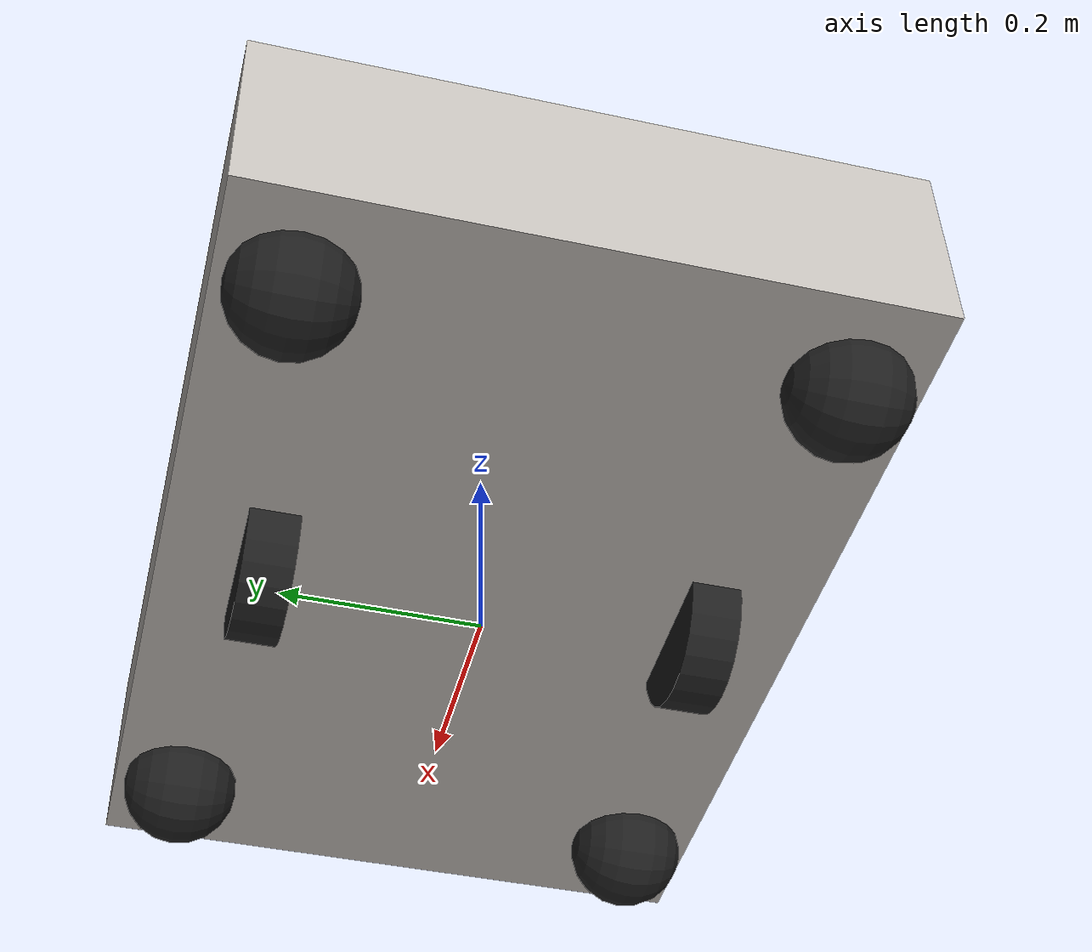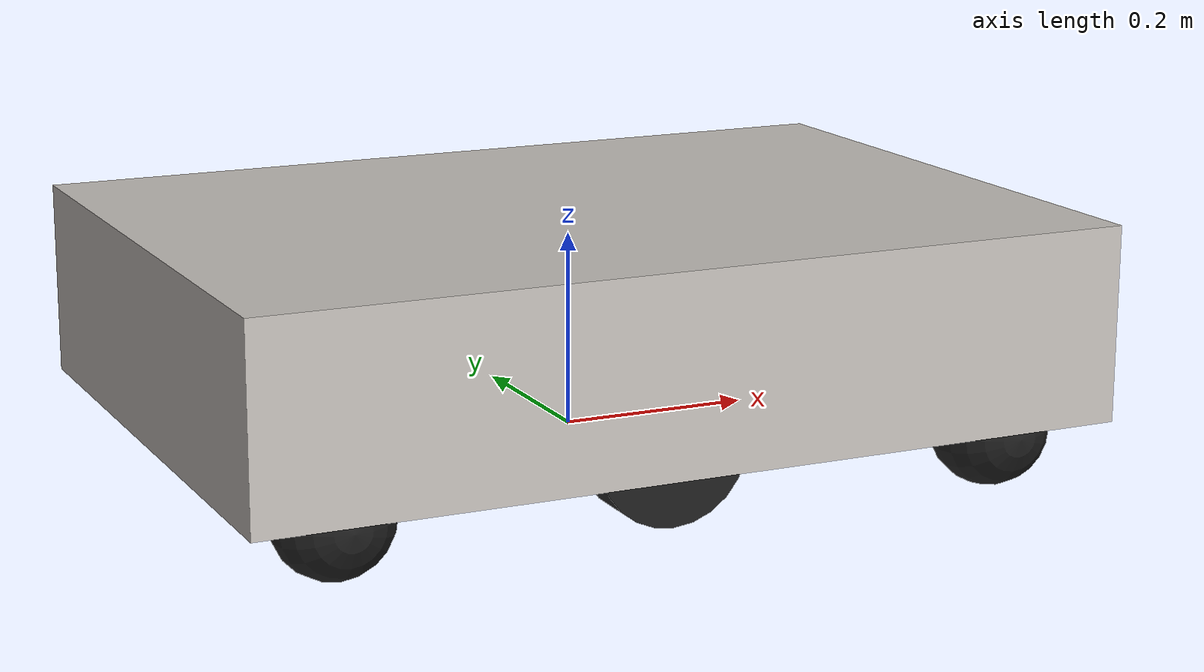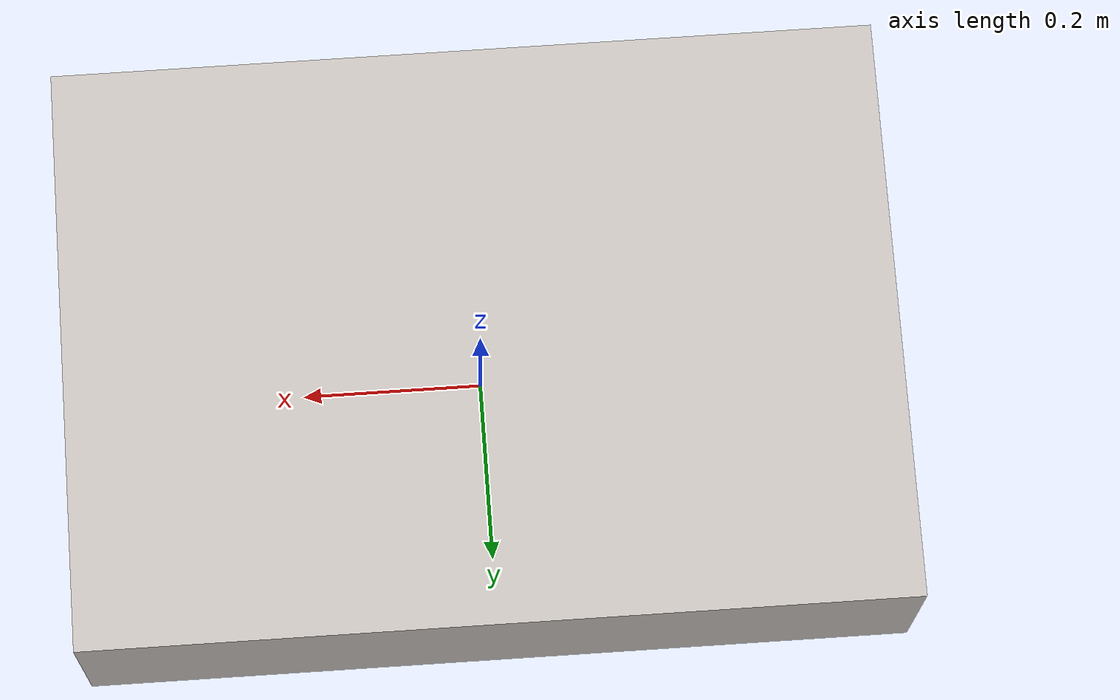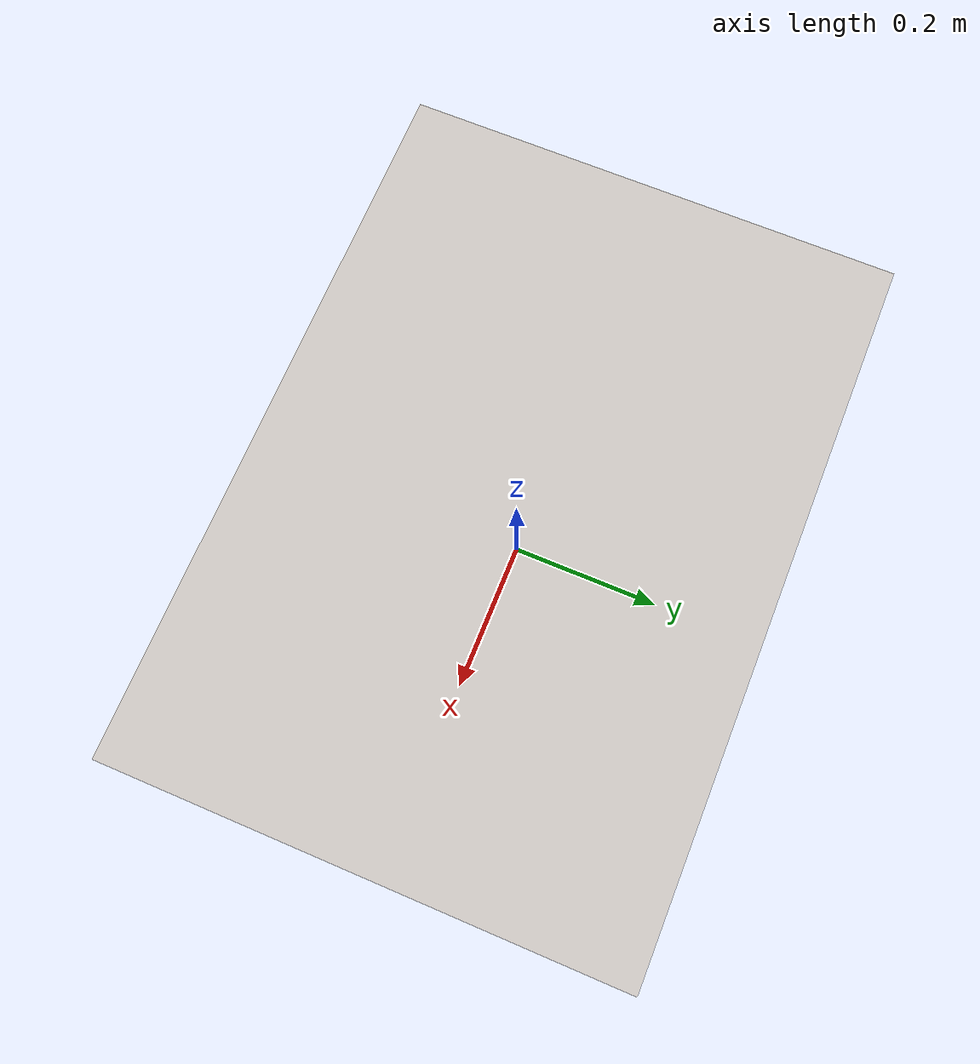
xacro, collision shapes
<?xml version="1.0"?>
<robot xmlns:xacro="http://www.ros.org/wiki/xacro" name="amr_mtt">

    <!--................................ XACRO CONSTANTS .............................. -->

    <xacro:property name="chassis_mass" value="60"/>
    <xacro:property name="chassis_length" value="0.9"/>
    <xacro:property name="chassis_width" value="0.64"/>
    <xacro:property name="chassis_height" value="0.2"/>

    <xacro:property name="traction_wheel_mass" value="1"/>
    <xacro:property name="traction_wheel_base" value="0.88"/>
    <xacro:property name="traction_max_wheel_torque" value="150000"/>
    <xacro:property name="traction_wheel_friction" value="3.0"/>

    <xacro:property name="trolley_wheel_mass" value="0.1"/>
    <xacro:property name="trolley_track_width" value="0.5"/>
    <xacro:property name="trolley_wheel_friction" value="0.0"/>
    <xacro:property name="trolley_wheel_radius" value="0.06"/>
    <!-- a small constant -->
    <xacro:property name="eps" value="0.002"/>

    <xacro:property name="traction_wheel_radius" value="0.08"/>
    <xacro:property name="traction_wheel_width" value="0.05"/>
    <xacro:property name="traction_track_width" value="0.436"/>

    <xacro:property name="two_d_lidar_update_rate" value="30"/>
    <xacro:property name="two_d_lidar_sample_size" value="361"/>
    <xacro:property name="two_d_lidar_min_angle" value="0"/>
    <xacro:property name="two_d_lidar_max_angle" value="360"/>
    <xacro:property name="two_d_lidar_min_range" value="0.55"/>
    <xacro:property name="two_d_lidar_max_range" value="16"/>

    <xacro:property name="camera_baseline" value="0.06"/>
    <xacro:property name="camera_height" value="0.10"/>
    <xacro:property name="camera_horizontal_fov" value="60"/>

    <xacro:arg name="robot_namespace" default=""/>
    <xacro:arg name="wheel_odom_topic" default="odom" />
    <xacro:arg name="camera_enabled" default="false" />
    <xacro:arg name="stereo_camera_enabled" default="false" />
    <xacro:arg name="two_d_lidar_enabled" default="false" />
    <xacro:arg name="publish_wheel_odom_tf" default="true" />
    <xacro:arg name="conveyor_enabled" default="false"/>
    <xacro:arg name="ground_truth_frame" default="map"/>
    <xacro:arg name="sim_gazebo" default="false" />
    <xacro:arg name="sim_ign" default="false" />
    <xacro:arg name="sim_gz" default="false" />
    <xacro:arg name="odometry_source" default="world" />

    <xacro:property name="odometry_source" value="$(arg odometry_source)"/>

    <!-- ............................... LOAD MACROS ................................. -->

    <xacro:include filename="$(find amr_mtt)/urdf/materials.xacro"/>
    <xacro:include filename="$(find amr_mtt)/urdf/macros.xacro"/>

    <xacro:if value="$(arg sim_gazebo)">
        <xacro:include filename="$(find amr_mtt)/urdf/gazebo.xacro"/>
    </xacro:if>

    <xacro:if value="$(arg sim_ign)">
        <xacro:include filename="$(find amr_mtt)/urdf/ign.xacro"/>
    </xacro:if>

    <xacro:if value="$(arg sim_gz)">
        <xacro:include filename="$(find amr_mtt)/urdf/gz.xacro"/>
    </xacro:if>

    <!-- ................................ BASE LINK .................................. -->
    <link name="base_footprint"/>

    <link name="base_link"/>

    <joint name="base_joint" type="fixed">
        <parent link="base_footprint"/>
        <child link="base_link"/>
        <origin xyz="0.0 0 ${chassis_height/2 + traction_wheel_radius}" rpy="0 0 0.0" />
    </joint>

    <link name="chassis_link">

        <collision>
            <origin xyz="0 0 -0.05" rpy="0 0 0" />
            <geometry>
                <box size="${chassis_length} ${chassis_width} ${chassis_height}"/>
            </geometry>
        </collision>

        <visual>
            <origin xyz="0 0 0" rpy="0 0 0" />
            <geometry>
                <mesh filename="file://$(find amr_mtt)/meshes/amr_mtt_model/base_link.STL" scale="1 1 1"/>

            </geometry>
            <material name="">
                <color rgba="0.772549019607843 0.752941176470588 0.733333333333333 1" />
            </material>
        </visual>

        <inertial>
            <mass value="${chassis_mass}" />
            <xacro:box_inertia m="${chassis_mass}" x="${chassis_length}" y="${chassis_width}" z = "${chassis_height}"/>
        </inertial>

    </link>

    <joint name="chassis_joint" type="fixed">
        <parent link="base_link"/>
        <child link="chassis_link"/>
        <origin xyz="0.0 0 0" rpy="0 0 0.0" />
    </joint>

    <!-- ................................ WHEELS ..................................... -->

    <xacro:trolley_wheel cardinality="front" dexterity="left" origin_x="${chassis_length/2-0.10}" origin_y="${trolley_track_width/2}" origin_z="-${trolley_wheel_radius+chassis_height/2}"/>
    <xacro:trolley_wheel cardinality="front" dexterity="right" origin_x="${chassis_length/2-0.10}" origin_y="-${trolley_track_width/2}" origin_z="-${trolley_wheel_radius+chassis_height/2}"/>

    <xacro:trolley_wheel cardinality="back" dexterity="left" origin_x="-${chassis_length/2-0.10}" origin_y="${trolley_track_width/2}" origin_z="-${trolley_wheel_radius+chassis_height/2}"/>
    <xacro:trolley_wheel cardinality="back" dexterity="right" origin_x="-${chassis_length/2-0.10}" origin_y="-${trolley_track_width/2}" origin_z="-${trolley_wheel_radius+chassis_height/2}"/>

    <xacro:traction_wheel cardinality="middle" dexterity="left" origin_x="0" origin_y="${traction_track_width/2}" origin_z="-${chassis_height/2+2*trolley_wheel_radius+eps-traction_wheel_radius}"/>
    <xacro:traction_wheel cardinality="middle" dexterity="right" origin_x="0" origin_y="-${traction_track_width/2}" origin_z="-${chassis_height/2+2*trolley_wheel_radius+eps-traction_wheel_radius}"/>

    <!-- ............................. 2D LIDAR ........................................ -->

    <!-- .......................... FRONT LIDAR .................... -->
    <xacro:if value="$(arg two_d_lidar_enabled)">
        <link name="L_F_Lidar_Link">
            <collision>
                <origin xyz="0 0 0" rpy="0 0 0"/>
                <geometry>
                    <mesh filename="file://$(find amr_mtt)/meshes/amr_mtt_model/L_F_Lidar_Link.STL" scale="1 1 1"/>
                </geometry>
            </collision>

            <visual>
                <origin xyz="0 0 0" rpy="0 0 0"/>
                <geometry>
                    <mesh filename="file://$(find amr_mtt)/meshes/amr_mtt_model/L_F_Lidar_Link.STL" scale="1 1 1"/>
                </geometry>
                <material name="blue">
                    <color rgba="0 0 1 1" />
                </material>

            </visual>

            <inertial>
                <origin xyz="0 0 0" rpy="0 0 0"/>
                <mass value="0.1"/>
                <xacro:cylinder_inertia m="0.1" r="0.075" h="0.06"/>
            </inertial>
        </link>

        <joint name="L_F_Lidar_joint" type="fixed">
            <parent link="base_link"/>
            <child link="L_F_Lidar_Link"/>
            <origin xyz="0.33905 0.18905 0.18259" rpy="3.1416 0 0.7854"/>
        </joint>

        <gazebo reference="L_F_Lidar_Link">
            <material>Gazebo/White</material>
        </gazebo>
    </xacro:if>

    <!-- .......................... REAR LIDAR .................... -->
    <xacro:if value="$(arg two_d_lidar_enabled)">
        <link name="R_B_Lidar_Link">
            <collision>
                <origin xyz="0 0 0" rpy="0 0 0"/>
                <geometry>
                    <mesh filename="file://$(find amr_mtt)/meshes/amr_mtt_model/R_B_Lidar_Link.STL" scale="1 1 1"/>
                </geometry>
            </collision>

            <visual>
                <origin xyz="0 0 0" rpy="0 0 0"/>
                <geometry>
                    <mesh filename="file://$(find amr_mtt)/meshes/amr_mtt_model/R_B_Lidar_Link.STL" scale="1 1 1"/>
                </geometry>
                <material name="blue">
                    <color rgba="0 0 1 1" />
                </material>

            </visual>

            <inertial>
                <origin xyz="0 0 0" rpy="0 0 0"/>
                <mass value="0.1"/>
                <xacro:cylinder_inertia m="0.1" r="0.075" h="0.06"/>
            </inertial>
        </link>

        <joint name="R_B_Lidar_joint" type="fixed">
            <parent link="base_link"/>
            <child link="R_B_Lidar_Link"/>
            <!-- จุดติดตั้งด้านหลัง -->
            <origin xyz="-0.33905 -0.18905 0.18259" rpy="-3.1416 0 -0.7854"/>
        </joint>

        <gazebo reference="R_B_Lidar_Link">
            <material>Gazebo/White</material>
        </gazebo>
    </xacro:if>

    <!-- ............................. IMU ........................................ -->

    <link name="imu_frame"/>

    <joint name="imu_joint" type="fixed">
        <parent link="base_link"/>
        <child link="imu_frame"/>
        <origin xyz="0.0 0.0 0.08" rpy="0.0 0.0 0.0"/>
    </joint>

    <!-- ............................. CAMERA ........................................ -->

    <xacro:if value="$(arg camera_enabled)">

        <!-- KINECT CAMERA -->

        <link name="kinect_camera">

            <collision>
                <origin xyz="0 0 0" rpy="0 0 0" />
                <geometry>
                    <mesh filename="file://$(find amr_mtt)/meshes/amr_mtt_model/F_Cam_Link.STL" scale="1 1 1"/>
                </geometry>
            </collision>

            <visual>
                <origin xyz="0 0 0" rpy="0 0 0" />
                <geometry>
                    <mesh filename="file://$(find amr_mtt)/meshes/amr_mtt_model/F_Cam_Link.STL" scale="1 1 1"/>
                </geometry>
                <material name="red">
                    <color rgba="1 0 0 1" />
                </material>
            </visual>

            <inertial>
                <mass value="0.01"/>
                <xacro:box_inertia m="0.01" x="0.07" y="0.3" z = "0.09"/>
            </inertial>

        </link>

        <joint name="kinect_camera_joint" type="fixed">
            <origin rpy="0 0 0" xyz="${chassis_length/2} 0 0.26"/>
            <parent link="base_link"/>
            <child link="kinect_camera"/>
        </joint>

        <link name="kinect_camera_optical"/>

        <joint name="kinect_camera_optical_joint" type="fixed">
            <origin xyz="0 0 0" rpy="${-pi/2} 0 ${-pi/2}"/>
            <parent link="kinect_camera"/>
            <child link="kinect_camera_optical"/>
        </joint>

    </xacro:if>

    <!-- .............................STEREO CAMERA ........................................ -->

    <xacro:if value="$(arg stereo_camera_enabled)">

        <!-- STEREO CAMERA -->

        <link name="stereo_camera">

            <collision>
                <origin xyz="0 0 0" rpy="0 0 0" />
                <geometry>
                    <mesh filename="file://$(find amr_mtt)/meshes/amr_mtt_model/F_Cam_Link.STL" scale="1 1 1"/>
                </geometry>
            </collision>

            <visual>
                <origin xyz="0 0 0" rpy="0 0 0" />
                <geometry>
                    <mesh filename="file://$(find amr_mtt)/meshes/amr_mtt_model/F_Cam_Link.STL" scale="1 1 1"/>
                </geometry>
                <material name="red">
                    <color rgba="1 0 0 1" />
                </material>

            </visual>

            <inertial>
                <mass value="0.01"/>
                <xacro:box_inertia m="0.01" x="0.07" y="0.3" z = "0.09"/>
            </inertial>

        </link>

        <joint name="stereo_camera_joint" type="fixed">
            <origin rpy="0 0 0" xyz="${chassis_length/2} 0 0.26"/>
            <parent link="base_link"/>
            <child link="stereo_camera"/>
        </joint>

        <link name="stereo_camera_optical"/>

        <joint name="stereo_camera_optical_joint" type="fixed">
            <origin xyz="0 0 0" rpy="${-pi/2} 0 ${-pi/2}"/>
            <parent link="stereo_camera"/>
            <child link="stereo_camera_optical"/>
        </joint>

    </xacro:if>
</robot>

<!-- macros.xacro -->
<robot xmlns:xacro="http://www.ros.org/wiki/xacro" name="amr_mtt">

    <!--................................ INERTIA MATRICES .............................. -->

    <xacro:macro name="cylinder_inertia" params="m r h">
        <inertia ixx="${m * (3 * r * r + h * h) / 12}" ixy="0" ixz="0" iyy="${m * (3 * r * r + h * h) / 12}" iyz="0" izz="${m * r * r / 2}" />
    </xacro:macro>

    <xacro:macro name="box_inertia" params="m x y z">
        <inertia ixx="${m * (y * y + z * z) / 12}" ixy="0" ixz="0" iyy="${m * (x * x + z * z) / 12}" iyz="0" izz="${m * (y * y + x * x) / 12}" />
    </xacro:macro>

    <xacro:macro name="sphere_inertia" params="m r">
        <inertia ixx="${2 * m * r * r / 5}" ixy="0" ixz="0" iyy="${2 * m * r * r / 5}" iyz="0" izz="${2 * m * r * r / 5}" />
    </xacro:macro>

    <!-- ............................... TROLLEY WHEEL DEFINITION .............................. -->

    <xacro:macro name="trolley_wheel" params="cardinality dexterity origin_x origin_y origin_z">
        <link name="${cardinality}_${dexterity}_wheel">
            <collision>
                <origin xyz="0 0 0" rpy="0 ${pi/2} ${pi/2}" />
                <geometry>
                    <sphere radius="${trolley_wheel_radius}"/>
                </geometry>
            </collision>

            <inertial>
                <origin xyz="0 0 0" rpy="0 0 0" />
                <mass value="${trolley_wheel_mass}"/>
                <xacro:sphere_inertia m="${trolley_wheel_mass}" r="${trolley_wheel_radius}"/>
            </inertial>

            <mu>0.0</mu>
        </link>

        <joint name="${cardinality}_${dexterity}_wheel_joint" type="fixed">
            <parent link="base_link"/>
            <child link="${cardinality}_${dexterity}_wheel"/>
            <origin xyz="${origin_x} ${origin_y} ${origin_z}" rpy="0 0 0" />
            <axis xyz="0 1 0" rpy="0 0 0" />
        </joint>

        <gazebo reference="${cardinality}_${dexterity}_wheel">
            <material>Gazebo/Black</material>
        </gazebo>
    </xacro:macro>

    <xacro:macro name="traction_wheel" params="cardinality dexterity origin_x origin_y origin_z">
        <link name="${cardinality}_${dexterity}_wheel">
            <collision>
                <origin xyz="0 0 0" rpy="0 ${pi/2} ${pi/2}" />
                <geometry>
                    <cylinder length="${traction_wheel_width}" radius="${traction_wheel_radius}"/>
                </geometry>
                <self_collide>false</self_collide>
            </collision>

            <inertial>
                <origin xyz="0 0 0" rpy="0 ${pi/2} ${pi/2}" />
                <mass value="${traction_wheel_mass}"/>
                <xacro:cylinder_inertia m="${traction_wheel_mass}" r="${traction_wheel_radius}" h="${traction_wheel_width}"/>
            </inertial>

            <mu>5.0</mu>
        </link>

        <joint name="${cardinality}_${dexterity}_wheel_joint" type="continuous">
            <parent link="base_link"/>
            <child link="${cardinality}_${dexterity}_wheel"/>
            <origin xyz="${origin_x} ${origin_y} ${origin_z}" rpy="0 0 0" />
            <axis xyz="0 1 0" rpy="0 0 0" />
        </joint>

        <gazebo reference="${cardinality}_${dexterity}_wheel">
            <material>Gazebo/Black</material>
        </gazebo>
    </xacro:macro>

</robot>
